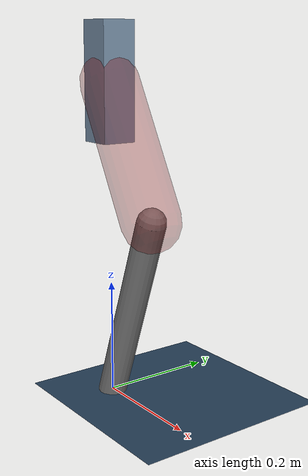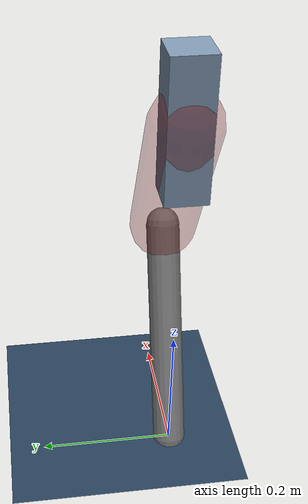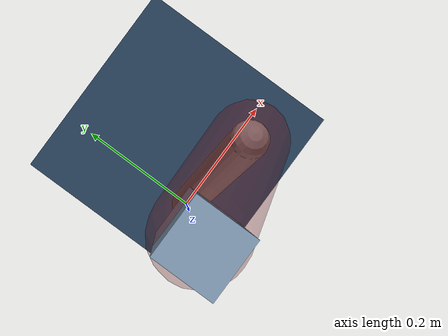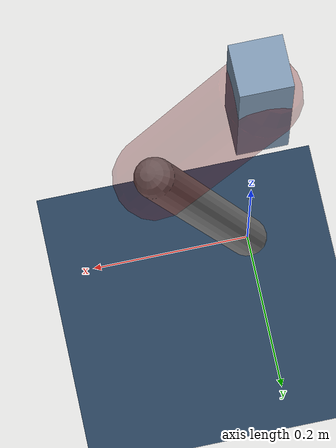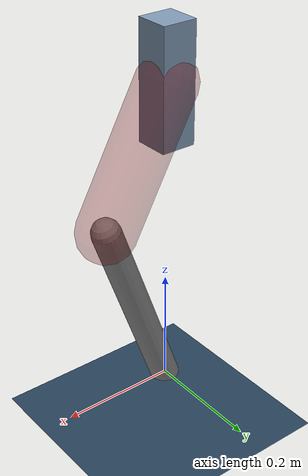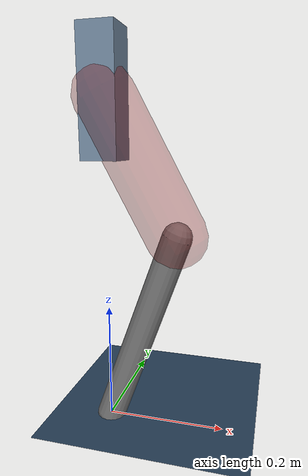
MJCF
<mujoco model="Hopper2D">
	<compiler inertiafromgeom="true" angle="radian" />
	<option timestep="0.001" integrator="implicit" cone="elliptic" solver="Newton" tolerance="1e-10" />

	<default>
		<geom contype="1" conaffinity="1" condim="3" friction="2 0.005 0.0001" solref="0.005 1" />
		<joint limited="true" damping="0.1" />
	</default>

	<asset>
		<texture name="skybox" type="skybox" builtin="gradient" rgb1=".4 .6 .8" rgb2="0 0 0" width="800" height="800" />
		<texture name="grid" type="2d" builtin="checker" rgb1=".1 .2 .3" rgb2=".2 .3 .4" width="300" height="300" mark="edge" markrgb=".2 .3 .4" />
		<material name="ground" texture="grid" texrepeat="1 1" texuniform="true" reflectance="0.1" />
		<material name="leg" rgba="0.5 0.6 0.7 1" />
	</asset>

	<worldbody>

		<geom name="floor" type="plane" size="5 5 0.25" material="ground" />

		<light directional="false" diffuse="0.8 0.8 0.8" specular="0.3 0.3 0.3" pos="0 0 2" dir="0 0 -1" />
		<light mode="targetbodycom" target="base" directional="false" diffuse="0.8 0.8 0.8" specular="0.3 0.3 0.3" pos="0 0 2" dir="0 0 -1" />

		<camera name="fixed" pos="0 -2 1" xyaxes="1 0 0 0 0 1" />
		<camera name="tracking" mode="trackcom" pos="0 -3 1" />

		<body name="root" pos="0 0 0.5484731672174176">
			<joint name="slide_x" type="slide" axis="1 0 0" range="-100 100" />
			<joint name="slide_z" type="slide" axis="0 0 1" range="0 10" />

			<body name="base" pos="0 0 0">
				<geom name="torso" type="box" size="0.03 0.03 0.1" mass="1.9939999999999998" material="leg" />

				<body name="link1" pos="0 0 0" euler="0 1.074568162111233 0">
					<joint type="hinge" axis="0 -1 0" pos="0 0 0" name="hinge1" limited="true" range="-3.14 3.14" stiffness="0" damping="0.1" />
					<geom name="thigh" type="capsule" fromto="0 0 0 0.24928518483054818 0 0" size="0.05" rgba="0.5 0 0 0.3" mass="0.8545414805594252" />

					<body name="link2" pos="0.24928518483054818 0 0" euler="0 0.842202202449418 0">
						<joint type="hinge" axis="0 -1 0" pos="0 0 0" name="hinge2" limited="true" range="-3.14 3.14" stiffness="0" damping="0.1" />
						<geom name="shank" type="capsule" fromto="0 0 0 0.3499943140000155 0 0" size="0.025" mass="0.5238954512000125" />

					</body>
				</body>
			</body>
		</body>
	</worldbody>

	<actuator>
		<motor name="torque1" joint="hinge1" ctrlrange="-44.31529303910529 44.31529303910529" ctrllimited="true" gear="1" />
		<motor name="torque2" joint="hinge2" ctrlrange="-45.80459779798016 45.80459779798016" ctrllimited="true" gear="1" />
	</actuator>
</mujoco>
